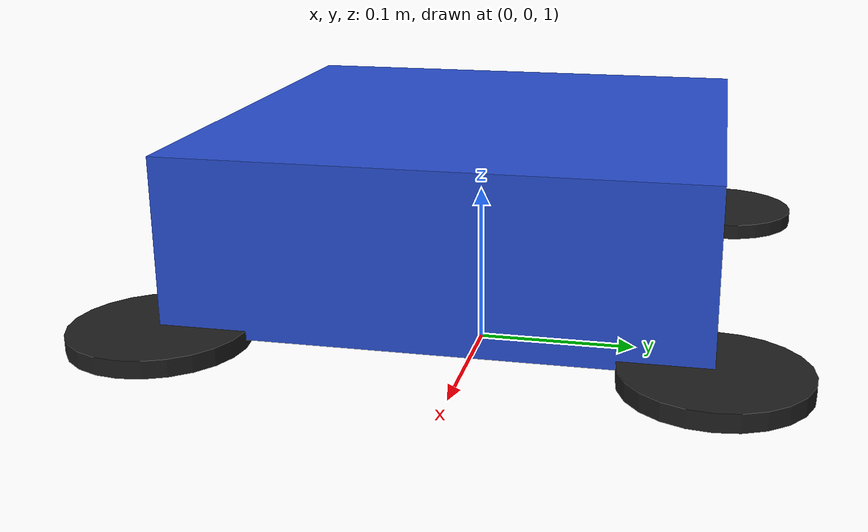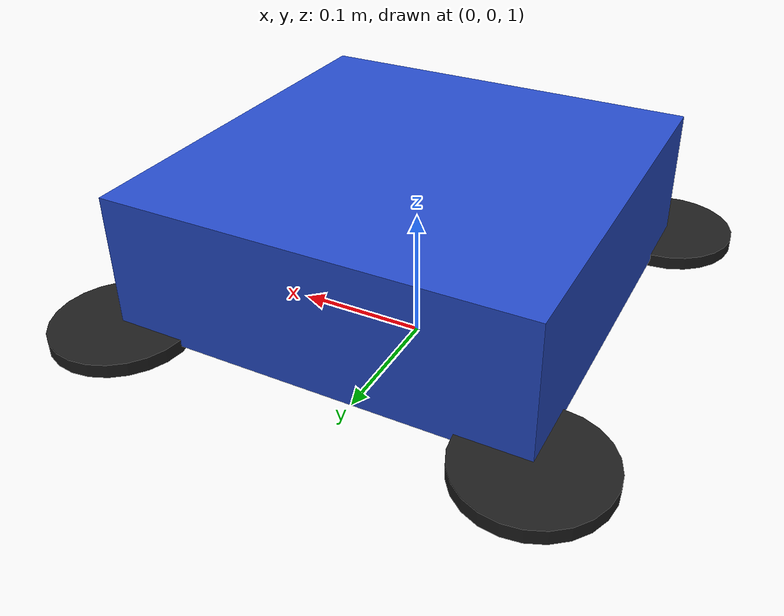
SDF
<?xml version='1.0' encoding='UTF-8'?>
<sdf version='1.6'>
  <world name='fc30_drone_world'>
    <!-- Basic physics configuration -->
    <physics name='default_physics' default='1' type='ode'>
      <max_step_size>0.001</max_step_size>
      <real_time_factor>1.0</real_time_factor>
      <real_time_update_rate>1000.0</real_time_update_rate>
    </physics>

    <!-- Add the FC30 drone model with four rotors -->
    <include>
      <pose>0 0 1 0 0 0</pose>
      <uri>model://fc30</uri>
    </include>

    <!-- Simple rendering setup without grid -->
    <scene>
      <ambient>0.5 0.5 0.5 1</ambient>
      <background>0.8 0.8 0.8 1</background>
      <shadows>false</shadows>
      <grid>false</grid>
      <fog>
        <enable>false</enable>
      </fog>
      <sky>
        <enable>false</enable>
      </sky>
    </scene>
  </world>
</sdf>

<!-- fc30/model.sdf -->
<sdf version='1.8'>
  <model name='fc30'>
    <!-- Frame links -->
    <link name='base_link'>
      <pose>0 0 0.1 0 0 0</pose>
      <inertial>
        <mass>2.5</mass>
        <inertia>
          <ixx>0.05</ixx>
          <ixy>0.0</ixy>
          <ixz>0.0</ixz>
          <iyy>0.05</iyy>
          <iyz>0.0</iyz>
          <izz>0.08</izz>
        </inertia>
      </inertial>
      <collision name='base_collision'>
        <geometry>
          <box>
            <size>0.3 0.3 0.1</size>
          </box>
        </geometry>
      </collision>
      <visual name='base_visual'>
        <geometry>
          <box>
            <size>0.3 0.3 0.1</size>
          </box>
        </geometry>
        <material>
          <script>
            <uri>file://media/materials/scripts/gazebo.material</uri>
            <name>Gazebo/Blue</name>
          </script>
        </material>
      </visual>

      <!-- Camera -->
      <sensor name='camera' type='camera'>
        <pose>0 0 0.05 0 0 0</pose>
        <camera>
          <horizontal_fov>1.047</horizontal_fov>
          <image>
            <width>640</width>
            <height>480</height>
            <format>R8G8B8</format>
          </image>
          <clip>
            <near>0.1</near>
            <far>100</far>
          </clip>
        </camera>
        <plugin name='camera_controller' filename='libgazebo_ros_camera.so'>
          <ros>{
            'remapping': {
              'image_raw': '/fc30/camera/image_raw',
              'camera_info': '/fc30/camera/camera_info'
            }
          }</ros>
          <camera_name>fc30_camera</camera_name>
          <frame_name>base_link</frame_name>
        </plugin>
      </sensor>

      <!-- IMU -->
      <sensor name='imu' type='imu'>
        <pose>0 0 0 0 0 0</pose>
        <imu>
          <angular_velocity>
            <x><noise type='gaussian'><mean>0.0</mean><stddev>0.001</stddev></noise></x>
            <y><noise type='gaussian'><mean>0.0</mean><stddev>0.001</stddev></noise></y>
            <z><noise type='gaussian'><mean>0.0</mean><stddev>0.001</stddev></noise></z>
          </angular_velocity>
          <linear_acceleration>
            <x><noise type='gaussian'><mean>0.0</mean><stddev>0.01</stddev></noise></x>
            <y><noise type='gaussian'><mean>0.0</mean><stddev>0.01</stddev></noise></y>
            <z><noise type='gaussian'><mean>9.81</mean><stddev>0.01</stddev></noise></z>
          </linear_acceleration>
        </imu>
        <plugin name='imu_plugin' filename='libgazebo_ros_imu_sensor.so'>
          <ros>{
            'remapping': {'imu': '/fc30/imu'}
          }</ros>
          <update_rate>100.0</update_rate>
          <frame_name>base_link</frame_name>
        </plugin>
      </sensor>

      <!-- GPS -->
      <sensor name='gps' type='gps'>
        <pose>0 0 0 0 0 0</pose>
        <gps>
          <position_sensing>
            <horizontal>
              <noise type='gaussian'><mean>0.0</mean><stddev>0.5</stddev></noise>
            </horizontal>
            <vertical>
              <noise type='gaussian'><mean>0.0</mean><stddev>1.0</stddev></noise>
            </vertical>
          </position_sensing>
          <velocity_sensing>
            <horizontal>
              <noise type='gaussian'><mean>0.0</mean><stddev>0.1</stddev></noise>
            </horizontal>
            <vertical>
              <noise type='gaussian'><mean>0.0</mean><stddev>0.2</stddev></noise>
            </vertical>
          </velocity_sensing>
        </gps>
        <plugin name='gps_plugin' filename='libgazebo_ros_gps_sensor.so'>
          <ros>{
            'remapping': {'gps/fix': '/fc30/gps/fix', 'gps/vel': '/fc30/gps/vel'}
          }</ros>
          <update_rate>10.0</update_rate>
          <frame_name>base_link</frame_name>
        </plugin>
      </sensor>
    </link>

    <!-- Rotors -->
    <link name='rotor_front_left'>
      <pose>0.15 0.15 0.05 0 0 0</pose>
      <collision name='rotor_front_left_collision'>
        <geometry>
          <cylinder>
            <radius>0.05</radius>
            <length>0.01</length>
          </cylinder>
        </geometry>
      </collision>
      <visual name='rotor_front_left_visual'>
        <geometry>
          <cylinder>
            <radius>0.05</radius>
            <length>0.01</length>
          </cylinder>
        </geometry>
        <material>
          <script>
            <uri>file://media/materials/scripts/gazebo.material</uri>
            <name>Gazebo/Black</name>
          </script>
        </material>
      </visual>
    </link>

    <link name='rotor_front_right'>
      <pose>0.15 -0.15 0.05 0 0 0</pose>
      <collision name='rotor_front_right_collision'>
        <geometry>
          <cylinder>
            <radius>0.05</radius>
            <length>0.01</length>
          </cylinder>
        </geometry>
      </collision>
      <visual name='rotor_front_right_visual'>
        <geometry>
          <cylinder>
            <radius>0.05</radius>
            <length>0.01</length>
          </cylinder>
        </geometry>
        <material>
          <script>
            <uri>file://media/materials/scripts/gazebo.material</uri>
            <name>Gazebo/Black</name>
          </script>
        </material>
      </visual>
    </link>

    <link name='rotor_back_left'>
      <pose>-0.15 0.15 0.05 0 0 0</pose>
      <collision name='rotor_back_left_collision'>
        <geometry>
          <cylinder>
            <radius>0.05</radius>
            <length>0.01</length>
          </cylinder>
        </geometry>
      </collision>
      <visual name='rotor_back_left_visual'>
        <geometry>
          <cylinder>
            <radius>0.05</radius>
            <length>0.01</length>
          </cylinder>
        </geometry>
        <material>
          <script>
            <uri>file://media/materials/scripts/gazebo.material</uri>
            <name>Gazebo/Black</name>
          </script>
        </material>
      </visual>
    </link>

    <link name='rotor_back_right'>
      <pose>-0.15 -0.15 0.05 0 0 0</pose>
      <collision name='rotor_back_right_collision'>
        <geometry>
          <cylinder>
            <radius>0.05</radius>
            <length>0.01</length>
          </cylinder>
        </geometry>
      </collision>
      <visual name='rotor_back_right_visual'>
        <geometry>
          <cylinder>
            <radius>0.05</radius>
            <length>0.01</length>
          </cylinder>
        </geometry>
        <material>
          <script>
            <uri>file://media/materials/scripts/gazebo.material</uri>
            <name>Gazebo/Black</name>
          </script>
        </material>
      </visual>
    </link>

    <!-- Joints -->
    <joint name='rotor_front_left_joint' type='revolute'>
      <parent>base_link</parent>
      <child>rotor_front_left</child>
      <pose>0 0 0 0 0 0</pose>
      <axis>
        <xyz>0 0 1</xyz>
        <limit>
          <lower>-1e16</lower>
          <upper>1e16</upper>
        </limit>
      </axis>
    </joint>

    <joint name='rotor_front_right_joint' type='revolute'>
      <parent>base_link</parent>
      <child>rotor_front_right</child>
      <pose>0 0 0 0 0 0</pose>
      <axis>
        <xyz>0 0 1</xyz>
        <limit>
          <lower>-1e16</lower>
          <upper>1e16</upper>
        </limit>
      </axis>
    </joint>

    <joint name='rotor_back_left_joint' type='revolute'>
      <parent>base_link</parent>
      <child>rotor_back_left</child>
      <pose>0 0 0 0 0 0</pose>
      <axis>
        <xyz>0 0 1</xyz>
        <limit>
          <lower>-1e16</lower>
          <upper>1e16</upper>
        </limit>
      </axis>
    </joint>

    <joint name='rotor_back_right_joint' type='revolute'>
      <parent>base_link</parent>
      <child>rotor_back_right</child>
      <pose>0 0 0 0 0 0</pose>
      <axis>
        <xyz>0 0 1</xyz>
        <limit>
          <lower>-1e16</lower>
          <upper>1e16</upper>
        </limit>
      </axis>
    </joint>

    <!-- Velocity controllers -->
    <plugin name='rotor_front_left_controller' filename='libgazebo_ros_joint_controller.so'>
      <ros>{
        'remapping': {
          'joint_target_velocity': '/fc30/rotor_front_left/cmd_vel'
        }
      }</ros>
      <joint_name>rotor_front_left_joint</joint_name>
      <controller_name>front_left_velocity_controller</controller_name>
      <interface_name>velocity</interface_name>
    </plugin>

    <plugin name='rotor_front_right_controller' filename='libgazebo_ros_joint_controller.so'>
      <ros>{
        'remapping': {
          'joint_target_velocity': '/fc30/rotor_front_right/cmd_vel'
        }
      }</ros>
      <joint_name>rotor_front_right_joint</joint_name>
      <controller_name>front_right_velocity_controller</controller_name>
      <interface_name>velocity</interface_name>
    </plugin>

    <plugin name='rotor_back_left_controller' filename='libgazebo_ros_joint_controller.so'>
      <ros>{
        'remapping': {
          'joint_target_velocity': '/fc30/rotor_back_left/cmd_vel'
        }
      }</ros>
      <joint_name>rotor_back_left_joint</joint_name>
      <controller_name>back_left_velocity_controller</controller_name>
      <interface_name>velocity</interface_name>
    </plugin>

    <plugin name='rotor_back_right_controller' filename='libgazebo_ros_joint_controller.so'>
      <ros>{
        'remapping': {
          'joint_target_velocity': '/fc30/rotor_back_right/cmd_vel'
        }
      }</ros>
      <joint_name>rotor_back_right_joint</joint_name>
      <controller_name>back_right_velocity_controller</controller_name>
      <interface_name>velocity</interface_name>
    </plugin>

    <!-- Gazebo ROS control plugin -->
    <plugin name='gazebo_ros_control' filename='libgazebo_ros2_control.so'>
      <ros>{
        'remapping': {
          'robot_description': '/robot_description'
        }
      }</ros>
      <parameters>./config/controller_manager.yaml</parameters>
    </plugin>

    <!-- PX4 sitl plugin (optional) -->
    <plugin name='mavlink_interface' filename='libgazebo_ros_mavlink_interface.so'>
      <ros>{
        'remapping': {
          'mavlink': '/mavlink'
        }
      }</ros>
      <robotNamespace>/fc30</robotNamespace>
      <serialEnabled>false</serialEnabled>
      <tcpEnabled>true</tcpEnabled>
      <tcpPort>4560</tcpPort>
      <udpEnabled>false</udpEnabled>
      <mavlinkID>1</mavlinkID>
      <poseTopicName>/fc30/pose</poseTopicName>
      <twistTopicName>/fc30/twist</twistTopicName>
    </plugin>

    <!-- Rotor Dynamics Plugins -->
    <plugin name='rotor_front_left_dynamics' filename='librotor_dynamics_plugin.so'>
      <jointName>rotor_front_left_joint</jointName>
      <linkName>rotor_front_left</linkName>
      <rotorRadius>0.1</rotorRadius>
      <rotorMaxSpeed>1000.0</rotorMaxSpeed>
      <rotorMaxThrust>7.0</rotorMaxThrust>
      <rotorDragCoeff>0.01</rotorDragCoeff>
      <rotorDirection>1</rotorDirection> <!-- Clockwise -->
    </plugin>

    <plugin name='rotor_front_right_dynamics' filename='librotor_dynamics_plugin.so'>
      <jointName>rotor_front_right_joint</jointName>
      <linkName>rotor_front_right</linkName>
      <rotorRadius>0.1</rotorRadius>
      <rotorMaxSpeed>1000.0</rotorMaxSpeed>
      <rotorMaxThrust>7.0</rotorMaxThrust>
      <rotorDragCoeff>0.01</rotorDragCoeff>
      <rotorDirection>-1</rotorDirection> <!-- Counter-clockwise -->
    </plugin>

    <plugin name='rotor_back_left_dynamics' filename='librotor_dynamics_plugin.so'>
      <jointName>rotor_back_left_joint</jointName>
      <linkName>rotor_back_left</linkName>
      <rotorRadius>0.1</rotorRadius>
      <rotorMaxSpeed>1000.0</rotorMaxSpeed>
      <rotorMaxThrust>7.0</rotorMaxThrust>
      <rotorDragCoeff>0.01</rotorDragCoeff>
      <rotorDirection>-1</rotorDirection> <!-- Counter-clockwise -->
    </plugin>

    <plugin name='rotor_back_right_dynamics' filename='librotor_dynamics_plugin.so'>
      <jointName>rotor_back_right_joint</jointName>
      <linkName>rotor_back_right</linkName>
      <rotorRadius>0.1</rotorRadius>
      <rotorMaxSpeed>1000.0</rotorMaxSpeed>
      <rotorMaxThrust>7.0</rotorMaxThrust>
      <rotorDragCoeff>0.01</rotorDragCoeff>
      <rotorDirection>1</rotorDirection> <!-- Clockwise -->
    </plugin>
  </model>
</sdf>
